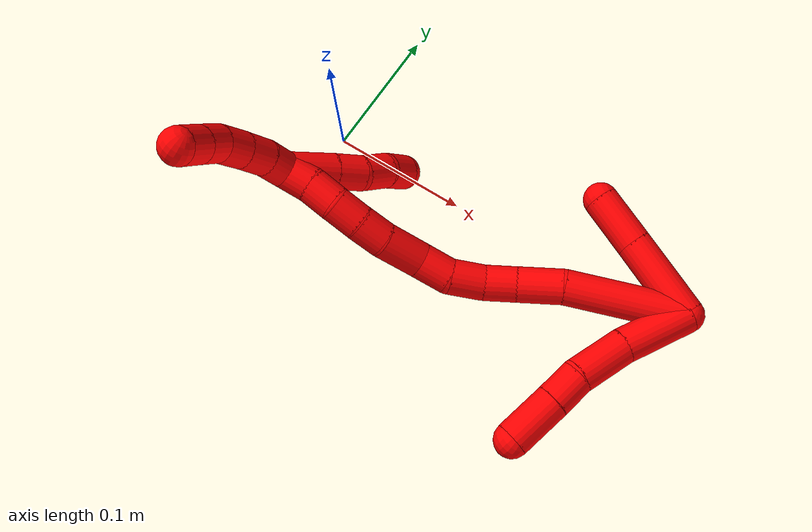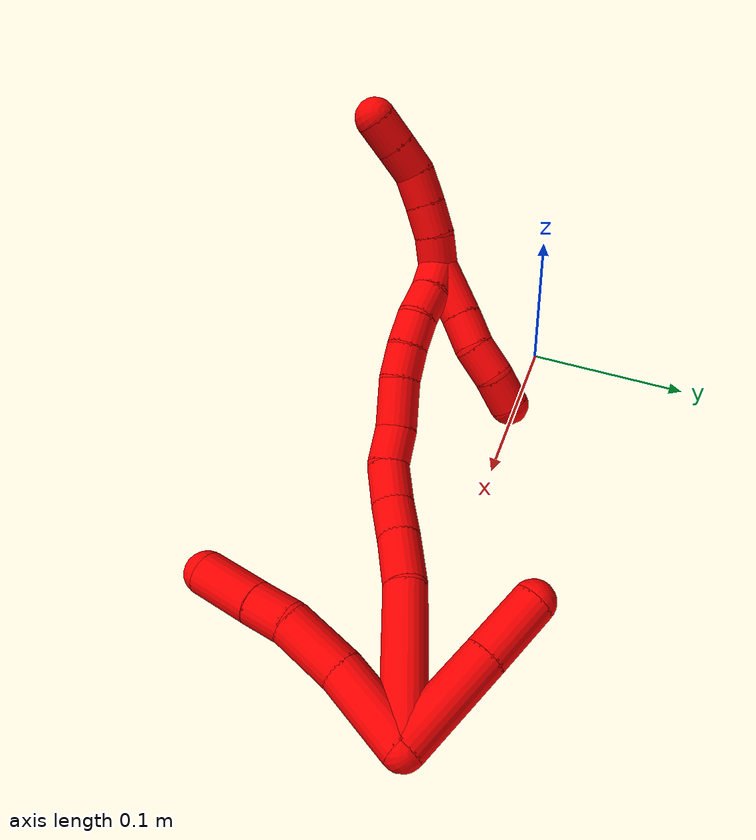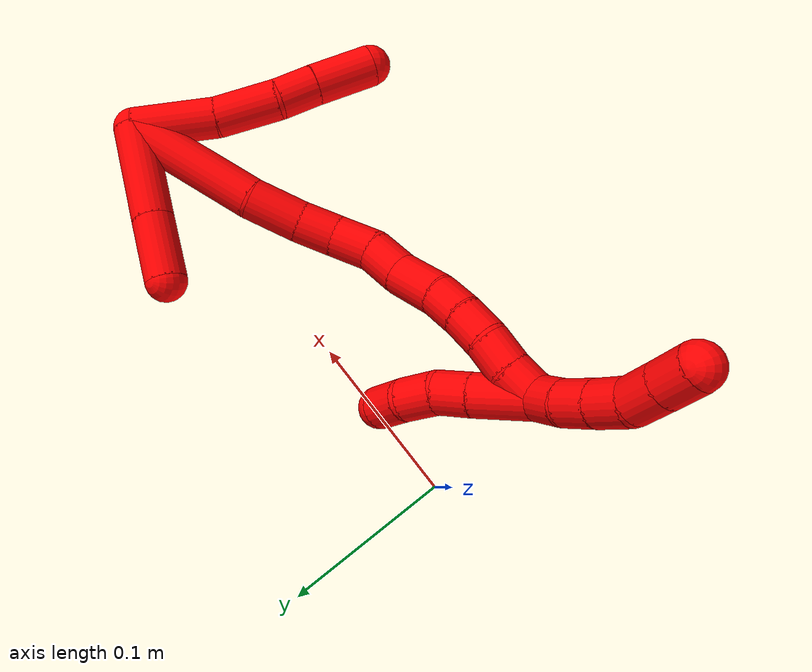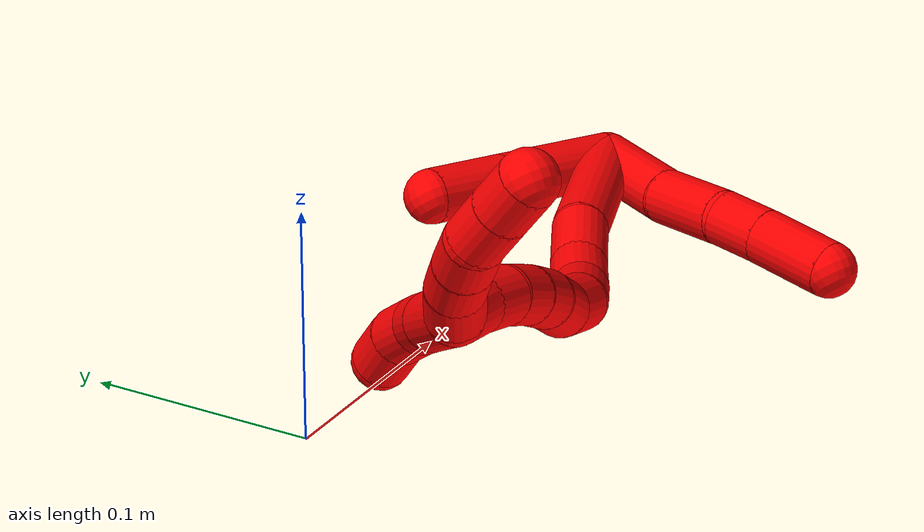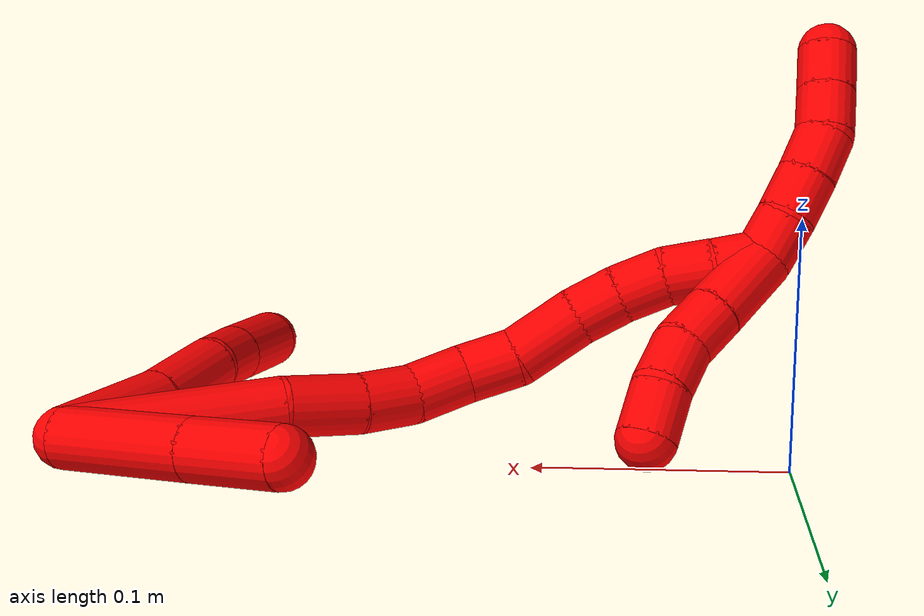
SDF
<sdf version="1.7">
 <world name="default">
  <model name="2">
   <static>0</static>
   <link name="2">
    <collision name="collision-cylinder-e_1_2_8">
     <pose>-0.011837 -0.01509 -0.016659 2.40557 -0.484735 -1.14032</pose>
     <geometry><cylinder><radius>0.0125</radius><length>0.050807</length></cylinder></geometry>
     <surface>
      <friction><ode><mu>1.16</mu><mu2>1.16</mu2><slip1>0</slip1><slip2>0</slip2></ode></friction>
      <contact><ode><kp>1e+06</kp><kd>1</kd><max_vel>0</max_vel><min_depth>0.001</min_depth></ode></contact>
     </surface>
    </collision>
    <visual name="visual-cylinder-e_1_2_8">
     <pose>-0.011837 -0.01509 -0.016659 2.40557 -0.484735 -1.14032</pose>
     <geometry><cylinder><radius>0.0125</radius><length>0.050807</length></cylinder></geometry>
     <material><ambient>1 0 0 1</ambient></material>
    </visual>
    <collision name="collision-cylinder-e_2_8_9">
     <pose>-0.030712 -0.043715 -0.045119 2.28787 -0.373496 -0.787478</pose>
     <geometry><cylinder><radius>0.0125</radius><length>0.038575</length></cylinder></geometry>
     <surface>
      <friction><ode><mu>1.16</mu><mu2>1.16</mu2><slip1>0</slip1><slip2>0</slip2></ode></friction>
      <contact><ode><kp>1e+06</kp><kd>1</kd><max_vel>0</max_vel><min_depth>0.001</min_depth></ode></contact>
     </surface>
    </collision>
    <visual name="visual-cylinder-e_2_8_9">
     <pose>-0.030712 -0.043715 -0.045119 2.28787 -0.373496 -0.787478</pose>
     <geometry><cylinder><radius>0.0125</radius><length>0.038575</length></cylinder></geometry>
     <material><ambient>1 0 0 1</ambient></material>
    </visual>
    <collision name="collision-cylinder-e_3_9_10">
     <pose>-0.039692 -0.065228 -0.065488 2.39181 -0.164434 -0.412851</pose>
     <geometry><cylinder><radius>0.0125</radius><length>0.023732</length></cylinder></geometry>
     <surface>
      <friction><ode><mu>1.16</mu><mu2>1.16</mu2><slip1>0</slip1><slip2>0</slip2></ode></friction>
      <contact><ode><kp>1e+06</kp><kd>1</kd><max_vel>0</max_vel><min_depth>0.001</min_depth></ode></contact>
     </surface>
    </collision>
    <visual name="visual-cylinder-e_3_9_10">
     <pose>-0.039692 -0.065228 -0.065488 2.39181 -0.164434 -0.412851</pose>
     <geometry><cylinder><radius>0.0125</radius><length>0.023732</length></cylinder></geometry>
     <material><ambient>1 0 0 1</ambient></material>
    </visual>
    <collision name="collision-cylinder-e_4_10_6">
     <pose>-0.045051 -0.085088 -0.087739 2.42653 -0.1863 -0.490076</pose>
     <geometry><cylinder><radius>0.0125</radius><length>0.036886</length></cylinder></geometry>
     <surface>
      <friction><ode><mu>1.16</mu><mu2>1.16</mu2><slip1>0</slip1><slip2>0</slip2></ode></friction>
      <contact><ode><kp>1e+06</kp><kd>1</kd><max_vel>0</max_vel><min_depth>0.001</min_depth></ode></contact>
     </surface>
    </collision>
    <visual name="visual-cylinder-e_4_10_6">
     <pose>-0.045051 -0.085088 -0.087739 2.42653 -0.1863 -0.490076</pose>
     <geometry><cylinder><radius>0.0125</radius><length>0.036886</length></cylinder></geometry>
     <material><ambient>1 0 0 1</ambient></material>
    </visual>
    <collision name="collision-cylinder-e_1_2_11">
     <pose>-0.027302 0.012957 0.00205 -1.41388 -1.12288 0.986027</pose>
     <geometry><cylinder><radius>0.0125</radius><length>0.060581</length></cylinder></geometry>
     <surface>
      <friction><ode><mu>1.16</mu><mu2>1.16</mu2><slip1>0</slip1><slip2>0</slip2></ode></friction>
      <contact><ode><kp>1e+06</kp><kd>1</kd><max_vel>0</max_vel><min_depth>0.001</min_depth></ode></contact>
     </surface>
    </collision>
    <visual name="visual-cylinder-e_1_2_11">
     <pose>-0.027302 0.012957 0.00205 -1.41388 -1.12288 0.986027</pose>
     <geometry><cylinder><radius>0.0125</radius><length>0.060581</length></cylinder></geometry>
     <material><ambient>1 0 0 1</ambient></material>
    </visual>
    <collision name="collision-cylinder-e_2_11_5">
     <pose>-0.072431 0.034228 0.005349 -1.42166 -1.13013 0.999352</pose>
     <geometry><cylinder><radius>0.0125</radius><length>0.039419</length></cylinder></geometry>
     <surface>
      <friction><ode><mu>1.16</mu><mu2>1.16</mu2><slip1>0</slip1><slip2>0</slip2></ode></friction>
      <contact><ode><kp>1e+06</kp><kd>1</kd><max_vel>0</max_vel><min_depth>0.001</min_depth></ode></contact>
     </surface>
    </collision>
    <visual name="visual-cylinder-e_2_11_5">
     <pose>-0.072431 0.034228 0.005349 -1.42166 -1.13013 0.999352</pose>
     <geometry><cylinder><radius>0.0125</radius><length>0.039419</length></cylinder></geometry>
     <material><ambient>1 0 0 1</ambient></material>
    </visual>
    <collision name="collision-cylinder-e_1_2_12">
     <pose>-0.038206 -0.005294 -0.018476 2.86252 -1.10472 -2.69351</pose>
     <geometry><cylinder><radius>0.0125</radius><length>0.085536</length></cylinder></geometry>
     <surface>
      <friction><ode><mu>1.16</mu><mu2>1.16</mu2><slip1>0</slip1><slip2>0</slip2></ode></friction>
      <contact><ode><kp>1e+06</kp><kd>1</kd><max_vel>0</max_vel><min_depth>0.001</min_depth></ode></contact>
     </surface>
    </collision>
    <visual name="visual-cylinder-e_1_2_12">
     <pose>-0.038206 -0.005294 -0.018476 2.86252 -1.10472 -2.69351</pose>
     <geometry><cylinder><radius>0.0125</radius><length>0.085536</length></cylinder></geometry>
     <material><ambient>1 0 0 1</ambient></material>
    </visual>
    <collision name="collision-cylinder-e_2_12_13">
     <pose>-0.08919 -0.012823 -0.046578 2.91348 -0.912476 -2.68297</pose>
     <geometry><cylinder><radius>0.0125</radius><length>0.032307</length></cylinder></geometry>
     <surface>
      <friction><ode><mu>1.16</mu><mu2>1.16</mu2><slip1>0</slip1><slip2>0</slip2></ode></friction>
      <contact><ode><kp>1e+06</kp><kd>1</kd><max_vel>0</max_vel><min_depth>0.001</min_depth></ode></contact>
     </surface>
    </collision>
    <visual name="visual-cylinder-e_2_12_13">
     <pose>-0.08919 -0.012823 -0.046578 2.91348 -0.912476 -2.68297</pose>
     <geometry><cylinder><radius>0.0125</radius><length>0.032307</length></cylinder></geometry>
     <material><ambient>1 0 0 1</ambient></material>
    </visual>
    <collision name="collision-cylinder-e_3_13_14">
     <pose>-0.111414 -0.017867 -0.062392 2.71542 -0.947146 -2.34258</pose>
     <geometry><cylinder><radius>0.0125</radius><length>0.023272</length></cylinder></geometry>
     <surface>
      <friction><ode><mu>1.16</mu><mu2>1.16</mu2><slip1>0</slip1><slip2>0</slip2></ode></friction>
      <contact><ode><kp>1e+06</kp><kd>1</kd><max_vel>0</max_vel><min_depth>0.001</min_depth></ode></contact>
     </surface>
    </collision>
    <visual name="visual-cylinder-e_3_13_14">
     <pose>-0.111414 -0.017867 -0.062392 2.71542 -0.947146 -2.34258</pose>
     <geometry><cylinder><radius>0.0125</radius><length>0.023272</length></cylinder></geometry>
     <material><ambient>1 0 0 1</ambient></material>
    </visual>
    <collision name="collision-cylinder-e_4_14_15">
     <pose>-0.131808 -0.024757 -0.072742 2.36607 -1.08156 -1.94699</pose>
     <geometry><cylinder><radius>0.0125</radius><length>0.024807</length></cylinder></geometry>
     <surface>
      <friction><ode><mu>1.16</mu><mu2>1.16</mu2><slip1>0</slip1><slip2>0</slip2></ode></friction>
      <contact><ode><kp>1e+06</kp><kd>1</kd><max_vel>0</max_vel><min_depth>0.001</min_depth></ode></contact>
     </surface>
    </collision>
    <visual name="visual-cylinder-e_4_14_15">
     <pose>-0.131808 -0.024757 -0.072742 2.36607 -1.08156 -1.94699</pose>
     <geometry><cylinder><radius>0.0125</radius><length>0.024807</length></cylinder></geometry>
     <material><ambient>1 0 0 1</ambient></material>
    </visual>
    <collision name="collision-cylinder-e_5_15_16">
     <pose>-0.15414 -0.030062 -0.078244 2.40138 -1.41275 -2.28806</pose>
     <geometry><cylinder><radius>0.0125</radius><length>0.023056</length></cylinder></geometry>
     <surface>
      <friction><ode><mu>1.16</mu><mu2>1.16</mu2><slip1>0</slip1><slip2>0</slip2></ode></friction>
      <contact><ode><kp>1e+06</kp><kd>1</kd><max_vel>0</max_vel><min_depth>0.001</min_depth></ode></contact>
     </surface>
    </collision>
    <visual name="visual-cylinder-e_5_15_16">
     <pose>-0.15414 -0.030062 -0.078244 2.40138 -1.41275 -2.28806</pose>
     <geometry><cylinder><radius>0.0125</radius><length>0.023056</length></cylinder></geometry>
     <material><ambient>1 0 0 1</ambient></material>
    </visual>
    <collision name="collision-cylinder-e_6_16_17">
     <pose>-0.179771 -0.036336 -0.078973 1.4504 -1.22783 -1.11668</pose>
     <geometry><cylinder><radius>0.0125</radius><length>0.030255</length></cylinder></geometry>
     <surface>
      <friction><ode><mu>1.16</mu><mu2>1.16</mu2><slip1>0</slip1><slip2>0</slip2></ode></friction>
      <contact><ode><kp>1e+06</kp><kd>1</kd><max_vel>0</max_vel><min_depth>0.001</min_depth></ode></contact>
     </surface>
    </collision>
    <visual name="visual-cylinder-e_6_16_17">
     <pose>-0.179771 -0.036336 -0.078973 1.4504 -1.22783 -1.11668</pose>
     <geometry><cylinder><radius>0.0125</radius><length>0.030255</length></cylinder></geometry>
     <material><ambient>1 0 0 1</ambient></material>
    </visual>
    <collision name="collision-cylinder-e_7_17_18">
     <pose>-0.20397 -0.043199 -0.077688 1.21528 -1.37884 -1.04106</pose>
     <geometry><cylinder><radius>0.0125</radius><length>0.020277</length></cylinder></geometry>
     <surface>
      <friction><ode><mu>1.16</mu><mu2>1.16</mu2><slip1>0</slip1><slip2>0</slip2></ode></friction>
      <contact><ode><kp>1e+06</kp><kd>1</kd><max_vel>0</max_vel><min_depth>0.001</min_depth></ode></contact>
     </surface>
    </collision>
    <visual name="visual-cylinder-e_7_17_18">
     <pose>-0.20397 -0.043199 -0.077688 1.21528 -1.37884 -1.04106</pose>
     <geometry><cylinder><radius>0.0125</radius><length>0.020277</length></cylinder></geometry>
     <material><ambient>1 0 0 1</ambient></material>
    </visual>
    <collision name="collision-cylinder-e_8_18_19">
     <pose>-0.224088 -0.045722 -0.076664 1.11184 -1.4931 -1.04336</pose>
     <geometry><cylinder><radius>0.0125</radius><length>0.020394</length></cylinder></geometry>
     <surface>
      <friction><ode><mu>1.16</mu><mu2>1.16</mu2><slip1>0</slip1><slip2>0</slip2></ode></friction>
      <contact><ode><kp>1e+06</kp><kd>1</kd><max_vel>0</max_vel><min_depth>0.001</min_depth></ode></contact>
     </surface>
    </collision>
    <visual name="visual-cylinder-e_8_18_19">
     <pose>-0.224088 -0.045722 -0.076664 1.11184 -1.4931 -1.04336</pose>
     <geometry><cylinder><radius>0.0125</radius><length>0.020394</length></cylinder></geometry>
     <material><ambient>1 0 0 1</ambient></material>
    </visual>
    <collision name="collision-cylinder-e_9_19_20">
     <pose>-0.244212 -0.045312 -0.077018 -2.13218 -1.43871 2.01625</pose>
     <geometry><cylinder><radius>0.0125</radius><length>0.02009</length></cylinder></geometry>
     <surface>
      <friction><ode><mu>1.16</mu><mu2>1.16</mu2><slip1>0</slip1><slip2>0</slip2></ode></friction>
      <contact><ode><kp>1e+06</kp><kd>1</kd><max_vel>0</max_vel><min_depth>0.001</min_depth></ode></contact>
     </surface>
    </collision>
    <visual name="visual-cylinder-e_9_19_20">
     <pose>-0.244212 -0.045312 -0.077018 -2.13218 -1.43871 2.01625</pose>
     <geometry><cylinder><radius>0.0125</radius><length>0.02009</length></cylinder></geometry>
     <material><ambient>1 0 0 1</ambient></material>
    </visual>
    <collision name="collision-cylinder-e_10_20_1">
     <pose>-0.264009 -0.044075 -0.079518 -3.07668 -1.38991 3.06374</pose>
     <geometry><cylinder><radius>0.0125</radius><length>0.020007</length></cylinder></geometry>
     <surface>
      <friction><ode><mu>1.16</mu><mu2>1.16</mu2><slip1>0</slip1><slip2>0</slip2></ode></friction>
      <contact><ode><kp>1e+06</kp><kd>1</kd><max_vel>0</max_vel><min_depth>0.001</min_depth></ode></contact>
     </surface>
    </collision>
    <visual name="visual-cylinder-e_10_20_1">
     <pose>-0.264009 -0.044075 -0.079518 -3.07668 -1.38991 3.06374</pose>
     <geometry><cylinder><radius>0.0125</radius><length>0.020007</length></cylinder></geometry>
     <material><ambient>1 0 0 1</ambient></material>
    </visual>
    <collision name="collision-cylinder-e_1_1_21">
     <pose>-0.281027 -0.050215 -0.078259 1.11659 -0.800625 -0.516778</pose>
     <geometry><cylinder><radius>0.0125</radius><length>0.02</length></cylinder></geometry>
     <surface>
      <friction><ode><mu>1.16</mu><mu2>1.16</mu2><slip1>0</slip1><slip2>0</slip2></ode></friction>
      <contact><ode><kp>1e+06</kp><kd>1</kd><max_vel>0</max_vel><min_depth>0.001</min_depth></ode></contact>
     </surface>
    </collision>
    <visual name="visual-cylinder-e_1_1_21">
     <pose>-0.281027 -0.050215 -0.078259 1.11659 -0.800625 -0.516778</pose>
     <geometry><cylinder><radius>0.0125</radius><length>0.02</length></cylinder></geometry>
     <material><ambient>1 0 0 1</ambient></material>
    </visual>
    <collision name="collision-cylinder-e_2_21_22">
     <pose>-0.294794 -0.063781 -0.073426 1.3321 -0.719304 -0.574615</pose>
     <geometry><cylinder><radius>0.0125</radius><length>0.02</length></cylinder></geometry>
     <surface>
      <friction><ode><mu>1.16</mu><mu2>1.16</mu2><slip1>0</slip1><slip2>0</slip2></ode></friction>
      <contact><ode><kp>1e+06</kp><kd>1</kd><max_vel>0</max_vel><min_depth>0.001</min_depth></ode></contact>
     </surface>
    </collision>
    <visual name="visual-cylinder-e_2_21_22">
     <pose>-0.294794 -0.063781 -0.073426 1.3321 -0.719304 -0.574615</pose>
     <geometry><cylinder><radius>0.0125</radius><length>0.02</length></cylinder></geometry>
     <material><ambient>1 0 0 1</ambient></material>
    </visual>
    <collision name="collision-cylinder-e_3_22_23">
     <pose>-0.307533 -0.078777 -0.06989 1.34604 -0.662523 -0.535203</pose>
     <geometry><cylinder><radius>0.0125</radius><length>0.02</length></cylinder></geometry>
     <surface>
      <friction><ode><mu>1.16</mu><mu2>1.16</mu2><slip1>0</slip1><slip2>0</slip2></ode></friction>
      <contact><ode><kp>1e+06</kp><kd>1</kd><max_vel>0</max_vel><min_depth>0.001</min_depth></ode></contact>
     </surface>
    </collision>
    <visual name="visual-cylinder-e_3_22_23">
     <pose>-0.307533 -0.078777 -0.06989 1.34604 -0.662523 -0.535203</pose>
     <geometry><cylinder><radius>0.0125</radius><length>0.02</length></cylinder></geometry>
     <material><ambient>1 0 0 1</ambient></material>
    </visual>
    <collision name="collision-cylinder-e_4_23_24">
     <pose>-0.31683 -0.09579 -0.066372 1.38422 -0.319994 -0.265949</pose>
     <geometry><cylinder><radius>0.0125</radius><length>0.02</length></cylinder></geometry>
     <surface>
      <friction><ode><mu>1.16</mu><mu2>1.16</mu2><slip1>0</slip1><slip2>0</slip2></ode></friction>
      <contact><ode><kp>1e+06</kp><kd>1</kd><max_vel>0</max_vel><min_depth>0.001</min_depth></ode></contact>
     </surface>
    </collision>
    <visual name="visual-cylinder-e_4_23_24">
     <pose>-0.31683 -0.09579 -0.066372 1.38422 -0.319994 -0.265949</pose>
     <geometry><cylinder><radius>0.0125</radius><length>0.02</length></cylinder></geometry>
     <material><ambient>1 0 0 1</ambient></material>
    </visual>
    <collision name="collision-cylinder-e_5_24_4">
     <pose>-0.322983 -0.114488 -0.062834 1.38334 -0.305441 -0.253569</pose>
     <geometry><cylinder><radius>0.0125</radius><length>0.02</length></cylinder></geometry>
     <surface>
      <friction><ode><mu>1.16</mu><mu2>1.16</mu2><slip1>0</slip1><slip2>0</slip2></ode></friction>
      <contact><ode><kp>1e+06</kp><kd>1</kd><max_vel>0</max_vel><min_depth>0.001</min_depth></ode></contact>
     </surface>
    </collision>
    <visual name="visual-cylinder-e_5_24_4">
     <pose>-0.322983 -0.114488 -0.062834 1.38334 -0.305441 -0.253569</pose>
     <geometry><cylinder><radius>0.0125</radius><length>0.02</length></cylinder></geometry>
     <material><ambient>1 0 0 1</ambient></material>
    </visual>
    <collision name="collision-cylinder-e_1_1_25">
     <pose>-0.261415 -0.031968 -0.07759 -1.26964 0.780568 -0.588407</pose>
     <geometry><cylinder><radius>0.0125</radius><length>0.035342</length></cylinder></geometry>
     <surface>
      <friction><ode><mu>1.16</mu><mu2>1.16</mu2><slip1>0</slip1><slip2>0</slip2></ode></friction>
      <contact><ode><kp>1e+06</kp><kd>1</kd><max_vel>0</max_vel><min_depth>0.001</min_depth></ode></contact>
     </surface>
    </collision>
    <visual name="visual-cylinder-e_1_1_25">
     <pose>-0.261415 -0.031968 -0.07759 -1.26964 0.780568 -0.588407</pose>
     <geometry><cylinder><radius>0.0125</radius><length>0.035342</length></cylinder></geometry>
     <material><ambient>1 0 0 1</ambient></material>
    </visual>
    <collision name="collision-cylinder-e_2_25_26">
     <pose>-0.241311 -0.013069 -0.071849 -1.28681 0.817161 -0.627816</pose>
     <geometry><cylinder><radius>0.0125</radius><length>0.021034</length></cylinder></geometry>
     <surface>
      <friction><ode><mu>1.16</mu><mu2>1.16</mu2><slip1>0</slip1><slip2>0</slip2></ode></friction>
      <contact><ode><kp>1e+06</kp><kd>1</kd><max_vel>0</max_vel><min_depth>0.001</min_depth></ode></contact>
     </surface>
    </collision>
    <visual name="visual-cylinder-e_2_25_26">
     <pose>-0.241311 -0.013069 -0.071849 -1.28681 0.817161 -0.627816</pose>
     <geometry><cylinder><radius>0.0125</radius><length>0.021034</length></cylinder></geometry>
     <material><ambient>1 0 0 1</ambient></material>
    </visual>
    <collision name="collision-cylinder-e_3_26_27">
     <pose>-0.227797 0.002987 -0.068421 -1.41768 0.56321 -0.486326</pose>
     <geometry><cylinder><radius>0.0125</radius><length>0.021893</length></cylinder></geometry>
     <surface>
      <friction><ode><mu>1.16</mu><mu2>1.16</mu2><slip1>0</slip1><slip2>0</slip2></ode></friction>
      <contact><ode><kp>1e+06</kp><kd>1</kd><max_vel>0</max_vel><min_depth>0.001</min_depth></ode></contact>
     </surface>
    </collision>
    <visual name="visual-cylinder-e_3_26_27">
     <pose>-0.227797 0.002987 -0.068421 -1.41768 0.56321 -0.486326</pose>
     <geometry><cylinder><radius>0.0125</radius><length>0.021893</length></cylinder></geometry>
     <material><ambient>1 0 0 1</ambient></material>
    </visual>
    <collision name="collision-cylinder-e_4_27_3">
     <pose>-0.216591 0.021467 -0.068495 -1.72868 0.516118 -0.599914</pose>
     <geometry><cylinder><radius>0.0125</radius><length>0.021731</length></cylinder></geometry>
     <surface>
      <friction><ode><mu>1.16</mu><mu2>1.16</mu2><slip1>0</slip1><slip2>0</slip2></ode></friction>
      <contact><ode><kp>1e+06</kp><kd>1</kd><max_vel>0</max_vel><min_depth>0.001</min_depth></ode></contact>
     </surface>
    </collision>
    <visual name="visual-cylinder-e_4_27_3">
     <pose>-0.216591 0.021467 -0.068495 -1.72868 0.516118 -0.599914</pose>
     <geometry><cylinder><radius>0.0125</radius><length>0.021731</length></cylinder></geometry>
     <material><ambient>1 0 0 1</ambient></material>
    </visual>
    <collision name="collision-sphere-3">
     <pose>-0.211229 0.0308 -0.069981 0 -0 0</pose>
     <geometry><sphere><radius>0.0125</radius></sphere></geometry>
     <surface>
      <friction><ode><mu>1.16</mu><mu2>1.16</mu2><slip1>0</slip1><slip2>0</slip2></ode></friction>
      <contact><ode><kp>1e+06</kp><kd>1</kd><max_vel>0</max_vel><min_depth>0.001</min_depth></ode></contact>
     </surface>
    </collision>
    <visual name="visual-sphere-3">
     <pose>-0.211229 0.0308 -0.069981 0 -0 0</pose>
     <geometry><sphere><radius>0.0125</radius></sphere></geometry>
     <material><ambient>1 0 0 1</ambient></material>
    </visual>
    <collision name="collision-sphere-27">
     <pose>-0.221953 0.012135 -0.067009 0 -0 0</pose>
     <geometry><sphere><radius>0.0125</radius></sphere></geometry>
     <surface>
      <friction><ode><mu>1.16</mu><mu2>1.16</mu2><slip1>0</slip1><slip2>0</slip2></ode></friction>
      <contact><ode><kp>1e+06</kp><kd>1</kd><max_vel>0</max_vel><min_depth>0.001</min_depth></ode></contact>
     </surface>
    </collision>
    <visual name="visual-sphere-27">
     <pose>-0.221953 0.012135 -0.067009 0 -0 0</pose>
     <geometry><sphere><radius>0.0125</radius></sphere></geometry>
     <material><ambient>1 0 0 1</ambient></material>
    </visual>
    <collision name="collision-sphere-26">
     <pose>-0.233642 -0.006161 -0.069833 0 -0 0</pose>
     <geometry><sphere><radius>0.0125</radius></sphere></geometry>
     <surface>
      <friction><ode><mu>1.16</mu><mu2>1.16</mu2><slip1>0</slip1><slip2>0</slip2></ode></friction>
      <contact><ode><kp>1e+06</kp><kd>1</kd><max_vel>0</max_vel><min_depth>0.001</min_depth></ode></contact>
     </surface>
    </collision>
    <visual name="visual-sphere-26">
     <pose>-0.233642 -0.006161 -0.069833 0 -0 0</pose>
     <geometry><sphere><radius>0.0125</radius></sphere></geometry>
     <material><ambient>1 0 0 1</ambient></material>
    </visual>
    <collision name="collision-sphere-25">
     <pose>-0.24898 -0.019978 -0.073866 0 -0 0</pose>
     <geometry><sphere><radius>0.0125</radius></sphere></geometry>
     <surface>
      <friction><ode><mu>1.16</mu><mu2>1.16</mu2><slip1>0</slip1><slip2>0</slip2></ode></friction>
      <contact><ode><kp>1e+06</kp><kd>1</kd><max_vel>0</max_vel><min_depth>0.001</min_depth></ode></contact>
     </surface>
    </collision>
    <visual name="visual-sphere-25">
     <pose>-0.24898 -0.019978 -0.073866 0 -0 0</pose>
     <geometry><sphere><radius>0.0125</radius></sphere></geometry>
     <material><ambient>1 0 0 1</ambient></material>
    </visual>
    <collision name="collision-sphere-4">
     <pose>-0.32599 -0.123858 -0.061057 0 -0 0</pose>
     <geometry><sphere><radius>0.0125</radius></sphere></geometry>
     <surface>
      <friction><ode><mu>1.16</mu><mu2>1.16</mu2><slip1>0</slip1><slip2>0</slip2></ode></friction>
      <contact><ode><kp>1e+06</kp><kd>1</kd><max_vel>0</max_vel><min_depth>0.001</min_depth></ode></contact>
     </surface>
    </collision>
    <visual name="visual-sphere-4">
     <pose>-0.32599 -0.123858 -0.061057 0 -0 0</pose>
     <geometry><sphere><radius>0.0125</radius></sphere></geometry>
     <material><ambient>1 0 0 1</ambient></material>
    </visual>
    <collision name="collision-sphere-24">
     <pose>-0.319976 -0.105118 -0.064611 0 -0 0</pose>
     <geometry><sphere><radius>0.0125</radius></sphere></geometry>
     <surface>
      <friction><ode><mu>1.16</mu><mu2>1.16</mu2><slip1>0</slip1><slip2>0</slip2></ode></friction>
      <contact><ode><kp>1e+06</kp><kd>1</kd><max_vel>0</max_vel><min_depth>0.001</min_depth></ode></contact>
     </surface>
    </collision>
    <visual name="visual-sphere-24">
     <pose>-0.319976 -0.105118 -0.064611 0 -0 0</pose>
     <geometry><sphere><radius>0.0125</radius></sphere></geometry>
     <material><ambient>1 0 0 1</ambient></material>
    </visual>
    <collision name="collision-sphere-23">
     <pose>-0.313685 -0.086463 -0.068133 0 -0 0</pose>
     <geometry><sphere><radius>0.0125</radius></sphere></geometry>
     <surface>
      <friction><ode><mu>1.16</mu><mu2>1.16</mu2><slip1>0</slip1><slip2>0</slip2></ode></friction>
      <contact><ode><kp>1e+06</kp><kd>1</kd><max_vel>0</max_vel><min_depth>0.001</min_depth></ode></contact>
     </surface>
    </collision>
    <visual name="visual-sphere-23">
     <pose>-0.313685 -0.086463 -0.068133 0 -0 0</pose>
     <geometry><sphere><radius>0.0125</radius></sphere></geometry>
     <material><ambient>1 0 0 1</ambient></material>
    </visual>
    <collision name="collision-sphere-22">
     <pose>-0.301382 -0.07109 -0.071647 0 -0 0</pose>
     <geometry><sphere><radius>0.0125</radius></sphere></geometry>
     <surface>
      <friction><ode><mu>1.16</mu><mu2>1.16</mu2><slip1>0</slip1><slip2>0</slip2></ode></friction>
      <contact><ode><kp>1e+06</kp><kd>1</kd><max_vel>0</max_vel><min_depth>0.001</min_depth></ode></contact>
     </surface>
    </collision>
    <visual name="visual-sphere-22">
     <pose>-0.301382 -0.07109 -0.071647 0 -0 0</pose>
     <geometry><sphere><radius>0.0125</radius></sphere></geometry>
     <material><ambient>1 0 0 1</ambient></material>
    </visual>
    <collision name="collision-sphere-21">
     <pose>-0.288205 -0.056472 -0.075204 0 -0 0</pose>
     <geometry><sphere><radius>0.0125</radius></sphere></geometry>
     <surface>
      <friction><ode><mu>1.16</mu><mu2>1.16</mu2><slip1>0</slip1><slip2>0</slip2></ode></friction>
      <contact><ode><kp>1e+06</kp><kd>1</kd><max_vel>0</max_vel><min_depth>0.001</min_depth></ode></contact>
     </surface>
    </collision>
    <visual name="visual-sphere-21">
     <pose>-0.288205 -0.056472 -0.075204 0 -0 0</pose>
     <geometry><sphere><radius>0.0125</radius></sphere></geometry>
     <material><ambient>1 0 0 1</ambient></material>
    </visual>
    <collision name="collision-sphere-1">
     <pose>-0.273849 -0.043958 -0.081314 0 -0 0</pose>
     <geometry><sphere><radius>0.0125</radius></sphere></geometry>
     <surface>
      <friction><ode><mu>1.16</mu><mu2>1.16</mu2><slip1>0</slip1><slip2>0</slip2></ode></friction>
      <contact><ode><kp>1e+06</kp><kd>1</kd><max_vel>0</max_vel><min_depth>0.001</min_depth></ode></contact>
     </surface>
    </collision>
    <visual name="visual-sphere-1">
     <pose>-0.273849 -0.043958 -0.081314 0 -0 0</pose>
     <geometry><sphere><radius>0.0125</radius></sphere></geometry>
     <material><ambient>1 0 0 1</ambient></material>
    </visual>
    <collision name="collision-sphere-11">
     <pose>-0.054604 0.025915 0.0041 0 -0 0</pose>
     <geometry><sphere><radius>0.0125</radius></sphere></geometry>
     <surface>
      <friction><ode><mu>1.16</mu><mu2>1.16</mu2><slip1>0</slip1><slip2>0</slip2></ode></friction>
      <contact><ode><kp>1e+06</kp><kd>1</kd><max_vel>0</max_vel><min_depth>0.001</min_depth></ode></contact>
     </surface>
    </collision>
    <visual name="visual-sphere-11">
     <pose>-0.054604 0.025915 0.0041 0 -0 0</pose>
     <geometry><sphere><radius>0.0125</radius></sphere></geometry>
     <material><ambient>1 0 0 1</ambient></material>
    </visual>
    <collision name="collision-sphere-6">
     <pose>-0.048467 -0.096971 -0.101423 0 -0 0</pose>
     <geometry><sphere><radius>0.0125</radius></sphere></geometry>
     <surface>
      <friction><ode><mu>1.16</mu><mu2>1.16</mu2><slip1>0</slip1><slip2>0</slip2></ode></friction>
      <contact><ode><kp>1e+06</kp><kd>1</kd><max_vel>0</max_vel><min_depth>0.001</min_depth></ode></contact>
     </surface>
    </collision>
    <visual name="visual-sphere-6">
     <pose>-0.048467 -0.096971 -0.101423 0 -0 0</pose>
     <geometry><sphere><radius>0.0125</radius></sphere></geometry>
     <material><ambient>1 0 0 1</ambient></material>
    </visual>
    <collision name="collision-sphere-10">
     <pose>-0.041635 -0.073205 -0.074054 0 -0 0</pose>
     <geometry><sphere><radius>0.0125</radius></sphere></geometry>
     <surface>
      <friction><ode><mu>1.16</mu><mu2>1.16</mu2><slip1>0</slip1><slip2>0</slip2></ode></friction>
      <contact><ode><kp>1e+06</kp><kd>1</kd><max_vel>0</max_vel><min_depth>0.001</min_depth></ode></contact>
     </surface>
    </collision>
    <visual name="visual-sphere-10">
     <pose>-0.041635 -0.073205 -0.074054 0 -0 0</pose>
     <geometry><sphere><radius>0.0125</radius></sphere></geometry>
     <material><ambient>1 0 0 1</ambient></material>
    </visual>
    <collision name="collision-sphere-9">
     <pose>-0.03775 -0.057251 -0.056921 0 -0 0</pose>
     <geometry><sphere><radius>0.0125</radius></sphere></geometry>
     <surface>
      <friction><ode><mu>1.16</mu><mu2>1.16</mu2><slip1>0</slip1><slip2>0</slip2></ode></friction>
      <contact><ode><kp>1e+06</kp><kd>1</kd><max_vel>0</max_vel><min_depth>0.001</min_depth></ode></contact>
     </surface>
    </collision>
    <visual name="visual-sphere-9">
     <pose>-0.03775 -0.057251 -0.056921 0 -0 0</pose>
     <geometry><sphere><radius>0.0125</radius></sphere></geometry>
     <material><ambient>1 0 0 1</ambient></material>
    </visual>
    <collision name="collision-sphere-2">
     <geometry><sphere><radius>0.0125</radius></sphere></geometry>
     <surface>
      <friction><ode><mu>1.16</mu><mu2>1.16</mu2><slip1>0</slip1><slip2>0</slip2></ode></friction>
      <contact><ode><kp>1e+06</kp><kd>1</kd><max_vel>0</max_vel><min_depth>0.001</min_depth></ode></contact>
     </surface>
    </collision>
    <visual name="visual-sphere-2">
     <geometry><sphere><radius>0.0125</radius></sphere></geometry>
     <material><ambient>1 0 0 1</ambient></material>
    </visual>
    <collision name="collision-sphere-19">
     <pose>-0.234254 -0.046432 -0.076314 0 -0 0</pose>
     <geometry><sphere><radius>0.0125</radius></sphere></geometry>
     <surface>
      <friction><ode><mu>1.16</mu><mu2>1.16</mu2><slip1>0</slip1><slip2>0</slip2></ode></friction>
      <contact><ode><kp>1e+06</kp><kd>1</kd><max_vel>0</max_vel><min_depth>0.001</min_depth></ode></contact>
     </surface>
    </collision>
    <visual name="visual-sphere-19">
     <pose>-0.234254 -0.046432 -0.076314 0 -0 0</pose>
     <geometry><sphere><radius>0.0125</radius></sphere></geometry>
     <material><ambient>1 0 0 1</ambient></material>
    </visual>
    <collision name="collision-sphere-8">
     <pose>-0.023675 -0.03018 -0.033318 0 -0 0</pose>
     <geometry><sphere><radius>0.0125</radius></sphere></geometry>
     <surface>
      <friction><ode><mu>1.16</mu><mu2>1.16</mu2><slip1>0</slip1><slip2>0</slip2></ode></friction>
      <contact><ode><kp>1e+06</kp><kd>1</kd><max_vel>0</max_vel><min_depth>0.001</min_depth></ode></contact>
     </surface>
    </collision>
    <visual name="visual-sphere-8">
     <pose>-0.023675 -0.03018 -0.033318 0 -0 0</pose>
     <geometry><sphere><radius>0.0125</radius></sphere></geometry>
     <material><ambient>1 0 0 1</ambient></material>
    </visual>
    <collision name="collision-sphere-5">
     <pose>-0.090258 0.042542 0.006599 0 -0 0</pose>
     <geometry><sphere><radius>0.0125</radius></sphere></geometry>
     <surface>
      <friction><ode><mu>1.16</mu><mu2>1.16</mu2><slip1>0</slip1><slip2>0</slip2></ode></friction>
      <contact><ode><kp>1e+06</kp><kd>1</kd><max_vel>0</max_vel><min_depth>0.001</min_depth></ode></contact>
     </surface>
    </collision>
    <visual name="visual-sphere-5">
     <pose>-0.090258 0.042542 0.006599 0 -0 0</pose>
     <geometry><sphere><radius>0.0125</radius></sphere></geometry>
     <material><ambient>1 0 0 1</ambient></material>
    </visual>
    <collision name="collision-sphere-12">
     <pose>-0.076412 -0.010588 -0.036951 0 -0 0</pose>
     <geometry><sphere><radius>0.0125</radius></sphere></geometry>
     <surface>
      <friction><ode><mu>1.16</mu><mu2>1.16</mu2><slip1>0</slip1><slip2>0</slip2></ode></friction>
      <contact><ode><kp>1e+06</kp><kd>1</kd><max_vel>0</max_vel><min_depth>0.001</min_depth></ode></contact>
     </surface>
    </collision>
    <visual name="visual-sphere-12">
     <pose>-0.076412 -0.010588 -0.036951 0 -0 0</pose>
     <geometry><sphere><radius>0.0125</radius></sphere></geometry>
     <material><ambient>1 0 0 1</ambient></material>
    </visual>
    <collision name="collision-sphere-13">
     <pose>-0.101968 -0.015058 -0.056205 0 -0 0</pose>
     <geometry><sphere><radius>0.0125</radius></sphere></geometry>
     <surface>
      <friction><ode><mu>1.16</mu><mu2>1.16</mu2><slip1>0</slip1><slip2>0</slip2></ode></friction>
      <contact><ode><kp>1e+06</kp><kd>1</kd><max_vel>0</max_vel><min_depth>0.001</min_depth></ode></contact>
     </surface>
    </collision>
    <visual name="visual-sphere-13">
     <pose>-0.101968 -0.015058 -0.056205 0 -0 0</pose>
     <geometry><sphere><radius>0.0125</radius></sphere></geometry>
     <material><ambient>1 0 0 1</ambient></material>
    </visual>
    <collision name="collision-sphere-14">
     <pose>-0.120859 -0.020676 -0.06858 0 -0 0</pose>
     <geometry><sphere><radius>0.0125</radius></sphere></geometry>
     <surface>
      <friction><ode><mu>1.16</mu><mu2>1.16</mu2><slip1>0</slip1><slip2>0</slip2></ode></friction>
      <contact><ode><kp>1e+06</kp><kd>1</kd><max_vel>0</max_vel><min_depth>0.001</min_depth></ode></contact>
     </surface>
    </collision>
    <visual name="visual-sphere-14">
     <pose>-0.120859 -0.020676 -0.06858 0 -0 0</pose>
     <geometry><sphere><radius>0.0125</radius></sphere></geometry>
     <material><ambient>1 0 0 1</ambient></material>
    </visual>
    <collision name="collision-sphere-15">
     <pose>-0.142756 -0.028838 -0.076904 0 -0 0</pose>
     <geometry><sphere><radius>0.0125</radius></sphere></geometry>
     <surface>
      <friction><ode><mu>1.16</mu><mu2>1.16</mu2><slip1>0</slip1><slip2>0</slip2></ode></friction>
      <contact><ode><kp>1e+06</kp><kd>1</kd><max_vel>0</max_vel><min_depth>0.001</min_depth></ode></contact>
     </surface>
    </collision>
    <visual name="visual-sphere-15">
     <pose>-0.142756 -0.028838 -0.076904 0 -0 0</pose>
     <geometry><sphere><radius>0.0125</radius></sphere></geometry>
     <material><ambient>1 0 0 1</ambient></material>
    </visual>
    <collision name="collision-sphere-16">
     <pose>-0.165524 -0.031285 -0.079584 0 -0 0</pose>
     <geometry><sphere><radius>0.0125</radius></sphere></geometry>
     <surface>
      <friction><ode><mu>1.16</mu><mu2>1.16</mu2><slip1>0</slip1><slip2>0</slip2></ode></friction>
      <contact><ode><kp>1e+06</kp><kd>1</kd><max_vel>0</max_vel><min_depth>0.001</min_depth></ode></contact>
     </surface>
    </collision>
    <visual name="visual-sphere-16">
     <pose>-0.165524 -0.031285 -0.079584 0 -0 0</pose>
     <geometry><sphere><radius>0.0125</radius></sphere></geometry>
     <material><ambient>1 0 0 1</ambient></material>
    </visual>
    <collision name="collision-sphere-17">
     <pose>-0.194017 -0.041386 -0.078362 0 -0 0</pose>
     <geometry><sphere><radius>0.0125</radius></sphere></geometry>
     <surface>
      <friction><ode><mu>1.16</mu><mu2>1.16</mu2><slip1>0</slip1><slip2>0</slip2></ode></friction>
      <contact><ode><kp>1e+06</kp><kd>1</kd><max_vel>0</max_vel><min_depth>0.001</min_depth></ode></contact>
     </surface>
    </collision>
    <visual name="visual-sphere-17">
     <pose>-0.194017 -0.041386 -0.078362 0 -0 0</pose>
     <geometry><sphere><radius>0.0125</radius></sphere></geometry>
     <material><ambient>1 0 0 1</ambient></material>
    </visual>
    <collision name="collision-sphere-18">
     <pose>-0.213922 -0.045013 -0.077015 0 -0 0</pose>
     <geometry><sphere><radius>0.0125</radius></sphere></geometry>
     <surface>
      <friction><ode><mu>1.16</mu><mu2>1.16</mu2><slip1>0</slip1><slip2>0</slip2></ode></friction>
      <contact><ode><kp>1e+06</kp><kd>1</kd><max_vel>0</max_vel><min_depth>0.001</min_depth></ode></contact>
     </surface>
    </collision>
    <visual name="visual-sphere-18">
     <pose>-0.213922 -0.045013 -0.077015 0 -0 0</pose>
     <geometry><sphere><radius>0.0125</radius></sphere></geometry>
     <material><ambient>1 0 0 1</ambient></material>
    </visual>
    <collision name="collision-sphere-20">
     <pose>-0.254169 -0.044192 -0.077722 0 -0 0</pose>
     <geometry><sphere><radius>0.0125</radius></sphere></geometry>
     <surface>
      <friction><ode><mu>1.16</mu><mu2>1.16</mu2><slip1>0</slip1><slip2>0</slip2></ode></friction>
      <contact><ode><kp>1e+06</kp><kd>1</kd><max_vel>0</max_vel><min_depth>0.001</min_depth></ode></contact>
     </surface>
    </collision>
    <visual name="visual-sphere-20">
     <pose>-0.254169 -0.044192 -0.077722 0 -0 0</pose>
     <geometry><sphere><radius>0.0125</radius></sphere></geometry>
     <material><ambient>1 0 0 1</ambient></material>
    </visual>
    <inertial>
     <pose>-0.137693 -0.028306 -0.050813 0 -0 0</pose>
     <mass>0.75</mass>
     <inertia>
      <ixx>-5.3e-05</ixx>
      <ixy>0</ixy>
      <ixz>0</ixz>
      <iyy>5.9e-05</iyy>
      <iyz>0</iyz>
      <izz>0.000102</izz>
     </inertia>
    </inertial>
   </link>
   <pose>0.279597 0.010689 0.012559 -0.688155 0.330599 -0.033813</pose>
  </model>
 </world>
</sdf>
